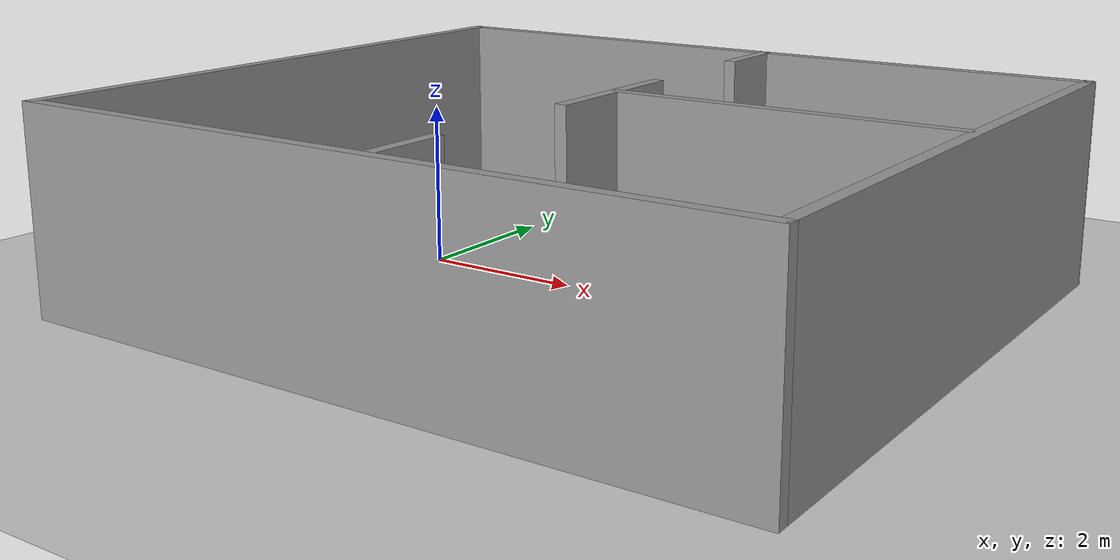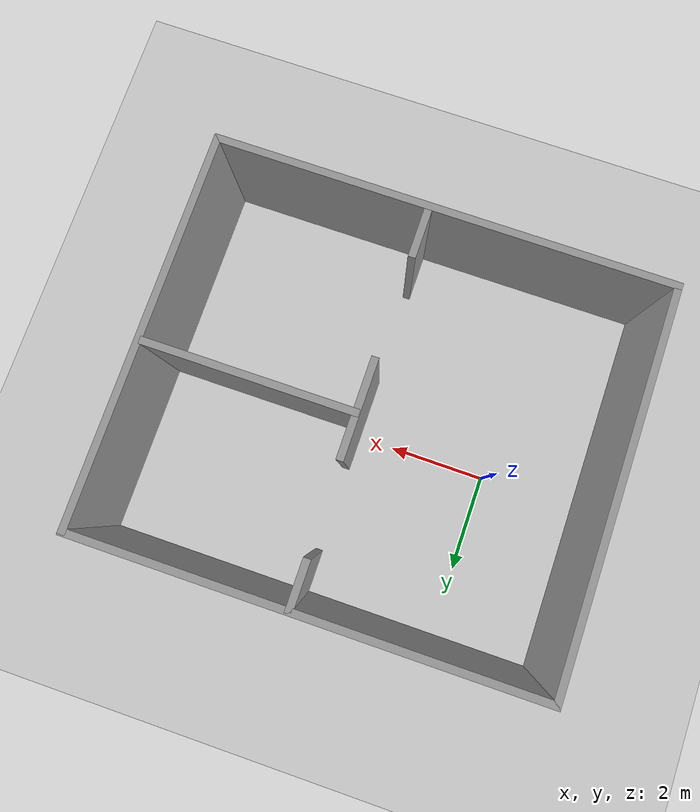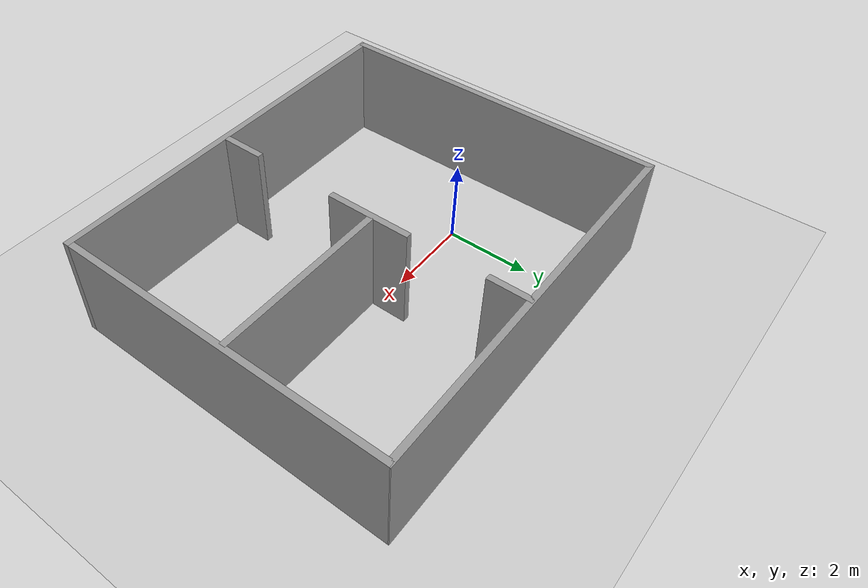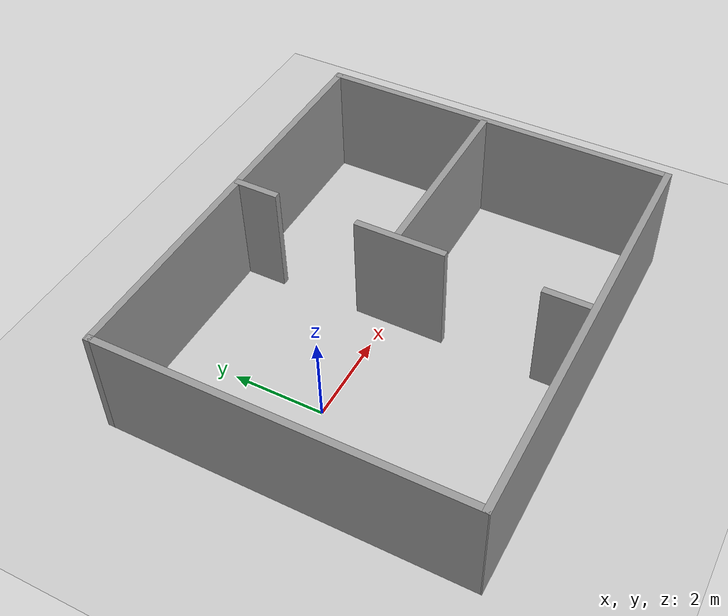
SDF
<sdf version="1.7">
 <world name="default">
  <plugin name="pal_gazebo_collisions" filename="libpal_gazebo_collisions.so"/>
  <plugin name="gazebo_ros_state" filename="libgazebo_ros_state.so"/>
  <physics name="default_physics" default="0" type="ode">
   <ode>
    <solver>
     <type>quick</type>
     <iters>20</iters>
     <sor>1</sor>
     <use_dynamic_moi_rescaling>0</use_dynamic_moi_rescaling>
    </solver>
    <constraints>
     <cfm>0</cfm>
     <erp>0.2</erp>
     <contact_max_correcting_vel>100</contact_max_correcting_vel>
     <contact_surface_layer>0</contact_surface_layer>
    </constraints>
   </ode>
   <real_time_update_rate>1000</real_time_update_rate>
   <max_step_size>0.001</max_step_size>
   <real_time_factor>1</real_time_factor>
   <max_contacts>20</max_contacts>
  </physics>
  <light name="sun" type="directional">
   <pose>0 0 10 0 -0 0</pose>
   <diffuse>0.8 0.8 0.8 1</diffuse>
   <specular>0.2 0.2 0.2 1</specular>
   <attenuation>
    <range>1000</range>
    <constant>0.9</constant>
    <linear>0.01</linear>
    <quadratic>0.001</quadratic>
   </attenuation>
   <direction>0.5 0.1 -0.9</direction>
   <spot><inner_angle>0</inner_angle><outer_angle>0</outer_angle><falloff>0</falloff></spot>
  </light>
  <model name="ground_plane">
   <static>1</static>
   <link name="link">
    <collision name="collision">
     <geometry><plane><normal>0 0 1</normal><size>100 100</size></plane></geometry>
     <surface><friction><ode><mu>100</mu><mu2>50</mu2></ode></friction></surface>
    </collision>
    <visual name="visual">
     <cast_shadows>0</cast_shadows>
     <geometry><plane><normal>0 0 1</normal><size>100 100</size></plane></geometry>
     <material>
      <script><uri>file://media/materials/scripts/gazebo.material</uri><name>Gazebo/Grey</name></script>
     </material>
    </visual>
    <velocity_decay><linear>0</linear><angular>0</angular></velocity_decay>
   </link>
  </model>
  <scene><ambient>0.2 0.2 0.2 1</ambient><background>0.7 0.7 0.7 1</background><shadows>1</shadows></scene>
  <gravity>0 0 -9.81</gravity>
  <magnetic_field>6e-06 2.3e-05 -4.2e-05</magnetic_field>
  <atmosphere type="adiabatic"/>
  <spherical_coordinates>
   <surface_model>EARTH_WGS84</surface_model>
   <latitude_deg>0</latitude_deg>
   <longitude_deg>0</longitude_deg>
   <elevation>0</elevation>
   <heading_deg>0</heading_deg>
  </spherical_coordinates>
  <audio><device>default</device></audio>
  <model name="two_rooms_expanded">
   <pose>2.47677 -0.429012 0 0 -0 0</pose>
   <link name="Wall_0">
    <collision name="Wall_0_Collision">
     <geometry><box><size>7.91127 0.15 2.5</size></box></geometry>
     <pose>0 0 1.25 0 -0 0</pose>
    </collision>
    <visual name="Wall_0_Visual">
     <pose>0 0 1.25 0 -0 0</pose>
     <geometry><box><size>7.91127 0.15 2.5</size></box></geometry>
     <material>
      <script><uri>file://media/materials/scripts/gazebo.material</uri><name>Gazebo/Grey</name></script>
      <ambient>1 1 1 1</ambient>
     </material>
     <meta><layer>0</layer></meta>
    </visual>
    <pose>-4.55 -0 0 0 -0 -1.5708</pose>
   </link>
   <link name="Wall_14">
    <collision name="Wall_14_Collision">
     <geometry><box><size>1 0.15 2.5</size></box></geometry>
     <pose>0 0 1.25 0 -0 0</pose>
    </collision>
    <visual name="Wall_14_Visual">
     <pose>0 0 1.25 0 -0 0</pose>
     <geometry><box><size>1 0.15 2.5</size></box></geometry>
     <material>
      <script><uri>file://media/materials/scripts/gazebo.material</uri><name>Gazebo/Grey</name></script>
      <ambient>1 1 1 1</ambient>
     </material>
     <meta><layer>0</layer></meta>
    </visual>
    <pose>0.303225 3.44816 0 0 -0 -1.5708</pose>
   </link>
   <link name="Wall_16">
    <collision name="Wall_16_Collision">
     <geometry><box><size>2 0.15 2.5</size></box></geometry>
     <pose>0 0 1.25 0 -0 0</pose>
    </collision>
    <visual name="Wall_16_Visual">
     <pose>0 0 1.25 0 -0 0</pose>
     <geometry><box><size>2 0.15 2.5</size></box></geometry>
     <material>
      <script><uri>file://media/materials/scripts/gazebo.material</uri><name>Gazebo/Grey</name></script>
      <ambient>1 1 1 1</ambient>
     </material>
     <meta><layer>0</layer></meta>
    </visual>
    <pose>0.329675 0.155287 0 0 -0 -1.5708</pose>
   </link>
   <link name="Wall_2">
    <collision name="Wall_2_Collision">
     <geometry><box><size>9.25 0.15 2.5</size></box></geometry>
     <pose>0 0 1.25 0 -0 0</pose>
    </collision>
    <visual name="Wall_2_Visual">
     <pose>0 0 1.25 0 -0 0</pose>
     <geometry><box><size>9.25 0.15 2.5</size></box></geometry>
     <material>
      <script><uri>file://media/materials/scripts/gazebo.material</uri><name>Gazebo/Grey</name></script>
      <ambient>1 1 1 1</ambient>
     </material>
     <meta><layer>0</layer></meta>
    </visual>
    <pose>0 3.90709 0 0 -0 0</pose>
   </link>
   <link name="Wall_23">
    <collision name="Wall_23_Collision">
     <geometry><box><size>4.25 0.15 2.5</size></box></geometry>
     <pose>0 0 1.25 0 -0 0</pose>
    </collision>
    <visual name="Wall_23_Visual">
     <pose>0 0 1.25 0 -0 0</pose>
     <geometry><box><size>4.25 0.15 2.5</size></box></geometry>
     <material>
      <script><uri>file://media/materials/scripts/gazebo.material</uri><name>Gazebo/Grey</name></script>
      <ambient>1 1 1 1</ambient>
     </material>
     <meta><layer>0</layer></meta>
    </visual>
    <pose>2.39645 0.239312 0 0 -0 0</pose>
   </link>
   <link name="Wall_3">
    <collision name="Wall_3_Collision">
     <geometry><box><size>7.91127 0.15 2.5</size></box></geometry>
     <pose>0 0 1.25 0 -0 0</pose>
    </collision>
    <visual name="Wall_3_Visual">
     <pose>0 0 1.25 0 -0 0</pose>
     <geometry><box><size>7.91127 0.15 2.5</size></box></geometry>
     <material>
      <script><uri>file://media/materials/scripts/gazebo.material</uri><name>Gazebo/Grey</name></script>
      <ambient>1 1 1 1</ambient>
     </material>
     <meta><layer>0</layer></meta>
    </visual>
    <pose>4.55 -0 0 0 -0 -1.5708</pose>
   </link>
   <link name="Wall_4">
    <collision name="Wall_4_Collision">
     <geometry><box><size>9.25 0.15 2.5</size></box></geometry>
     <pose>0 0 1.25 0 -0 0</pose>
    </collision>
    <visual name="Wall_4_Visual">
     <pose>0 0 1.25 0 -0 0</pose>
     <geometry><box><size>9.25 0.15 2.5</size></box></geometry>
     <material>
      <script><uri>file://media/materials/scripts/gazebo.material</uri><name>Gazebo/Grey</name></script>
      <ambient>1 1 1 1</ambient>
     </material>
     <meta><layer>0</layer></meta>
    </visual>
    <pose>0 -3.90709 0 0 -0 3.14159</pose>
   </link>
   <link name="Wall_6">
    <collision name="Wall_6_Collision">
     <geometry><box><size>1 0.15 2.5</size></box></geometry>
     <pose>0 0 1.25 0 -0 0</pose>
    </collision>
    <visual name="Wall_6_Visual">
     <pose>0 0 1.25 0 -0 0</pose>
     <geometry><box><size>1 0.15 2.5</size></box></geometry>
     <material>
      <script><uri>file://media/materials/scripts/gazebo.material</uri><name>Gazebo/Grey</name></script>
      <ambient>1 1 1 1</ambient>
     </material>
     <meta><layer>0</layer></meta>
    </visual>
    <pose>0.3 -3.34596 0 0 -0 1.5708</pose>
   </link>
   <static>1</static>
  </model>
 </world>
</sdf>
